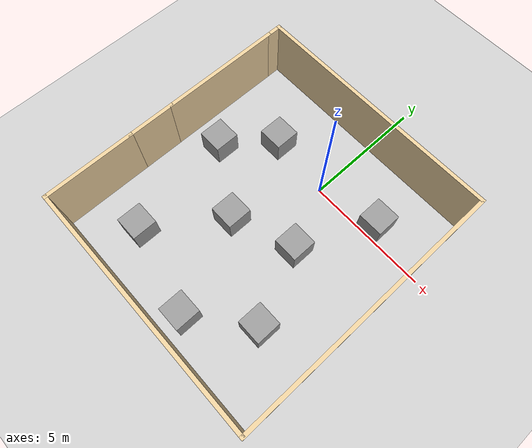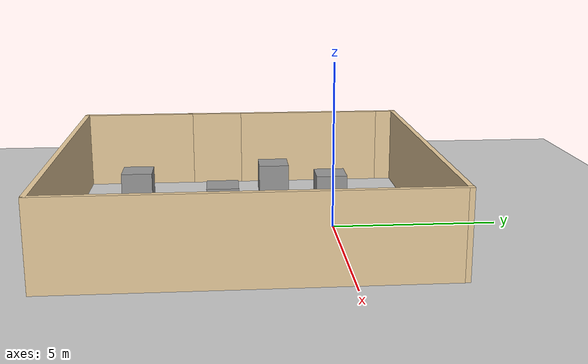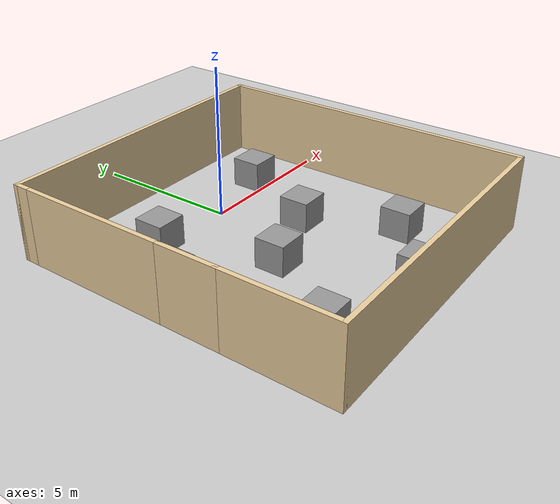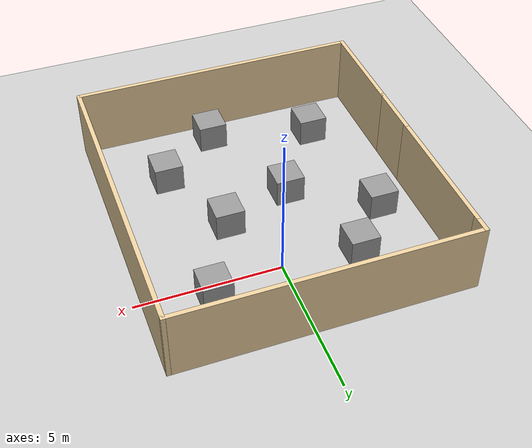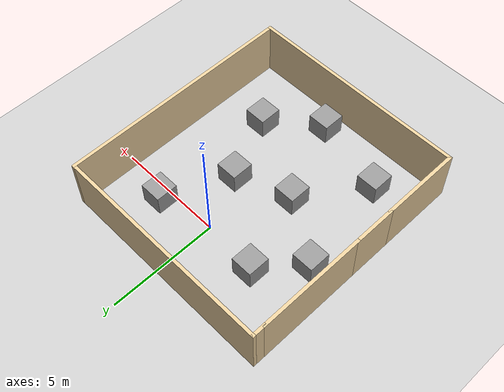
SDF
<?xml version="1.0"?>
<sdf version="1.9">
  <world name="maze">

    <physics name="1ms" type="ode">
      <max_step_size>0.001</max_step_size>
      <real_time_factor>1.0</real_time_factor>
    </physics>

    <plugin filename="libignition-gazebo-physics-system.so"
            name="ignition::gazebo::systems::Physics"/>
    <plugin filename="libignition-gazebo-user-commands-system.so"
            name="ignition::gazebo::systems::UserCommands"/>
    <plugin filename="libignition-gazebo-scene-broadcaster-system.so"
            name="ignition::gazebo::systems::SceneBroadcaster"/>
    <plugin filename="libignition-gazebo-sensors-system.so"
            name="ignition::gazebo::systems::Sensors">
      <render_engine>ogre2</render_engine>
    </plugin>
    <plugin filename="libignition-gazebo-contact-system.so"
            name="ignition::gazebo::systems::Contact"/>

    <light type="directional" name="sun">
      <cast_shadows>true</cast_shadows>
      <pose>0 0 10 0 0 0</pose>
      <diffuse>0.8 0.8 0.8 1</diffuse>
      <specular>0.2 0.2 0.2 1</specular>
      <direction>-0.5 0.1 -0.9</direction>
    </light>

    <!-- Ground plane -->
    <model name="ground_plane">
      <static>true</static>
      <link name="link">
        <collision name="collision">
          <geometry>
            <plane>
              <normal>0 0 1</normal>
              <size>100 100</size>
            </plane>
          </geometry>
          <surface>
            <friction>
              <ode><mu>1.0</mu><mu2>1.0</mu2></ode>
            </friction>
          </surface>
        </collision>
        <visual name="visual">
          <geometry>
            <plane>
              <normal>0 0 1</normal>
              <size>100 100</size>
            </plane>
          </geometry>
          <material>
            <ambient>0.8 0.8 0.8 1</ambient>
            <diffuse>0.8 0.8 0.8 1</diffuse>
          </material>
        </visual>
      </link>
    </model>

    <!-- Wall_0: south-left vertical segment, len=3.75, rot=-90° -->
    <model name="Wall_0">
      <static>true</static>
      <pose>-5.46 -6.22 0 0 0 -1.5708</pose>
      <link name="link">
        <collision name="col">
          <pose>0 0 1.25 0 0 0</pose>
          <geometry><box><size>3.75 0.15 2.5</size></box></geometry>
        </collision>
        <visual name="vis">
          <pose>0 0 1.25 0 0 0</pose>
          <geometry><box><size>3.75 0.15 2.5</size></box></geometry>
          <material><ambient>0.92 0.81 0.62 1</ambient><diffuse>0.92 0.81 0.62 1</diffuse></material>
        </visual>
      </link>
    </model>

    <!-- Wall_1: bottom horizontal, len=10.25 -->
    <model name="Wall_1">
      <static>true</static>
      <pose>-0.41 -8.02 0 0 0 0</pose>
      <link name="link">
        <collision name="col">
          <pose>0 0 1.25 0 0 0</pose>
          <geometry><box><size>10.25 0.15 2.5</size></box></geometry>
        </collision>
        <visual name="vis">
          <pose>0 0 1.25 0 0 0</pose>
          <geometry><box><size>10.25 0.15 2.5</size></box></geometry>
          <material><ambient>0.92 0.81 0.62 1</ambient><diffuse>0.92 0.81 0.62 1</diffuse></material>
        </visual>
      </link>
    </model>

    <!-- Wall_2: right vertical, len=11, rot=90° -->
    <model name="Wall_2">
      <static>true</static>
      <pose>4.64 -2.595 0 0 0 1.5708</pose>
      <link name="link">
        <collision name="col">
          <pose>0 0 1.25 0 0 0</pose>
          <geometry><box><size>11 0.15 2.5</size></box></geometry>
        </collision>
        <visual name="vis">
          <pose>0 0 1.25 0 0 0</pose>
          <geometry><box><size>11 0.15 2.5</size></box></geometry>
          <material><ambient>0.92 0.81 0.62 1</ambient><diffuse>0.92 0.81 0.62 1</diffuse></material>
        </visual>
      </link>
    </model>

    <!-- Wall_4: left lower gap vertical, len=2, rot=90° -->
    <model name="Wall_4">
      <static>true</static>
      <pose>-5.46 -3.495 0 0 0 1.5708</pose>
      <link name="link">
        <collision name="col">
          <pose>0 0 1.25 0 0 0</pose>
          <geometry><box><size>2 0.15 2.5</size></box></geometry>
        </collision>
        <visual name="vis">
          <pose>0 0 1.25 0 0 0</pose>
          <geometry><box><size>2 0.15 2.5</size></box></geometry>
          <material><ambient>0.92 0.81 0.62 1</ambient><diffuse>0.92 0.81 0.62 1</diffuse></material>
        </visual>
      </link>
    </model>

    <!-- Wall_5: left upper vertical, len=5, rot=90° -->
    <model name="Wall_5">
      <static>true</static>
      <pose>-5.46 -0.145 0 0 0 1.5708</pose>
      <link name="link">
        <collision name="col">
          <pose>0 0 1.25 0 0 0</pose>
          <geometry><box><size>5 0.15 2.5</size></box></geometry>
        </collision>
        <visual name="vis">
          <pose>0 0 1.25 0 0 0</pose>
          <geometry><box><size>5 0.15 2.5</size></box></geometry>
          <material><ambient>0.92 0.81 0.62 1</ambient><diffuse>0.92 0.81 0.62 1</diffuse></material>
        </visual>
      </link>
    </model>

    <!-- Wall_8: top horizontal, len=10.25 -->
    <model name="Wall_8">
      <static>true</static>
      <pose>-0.41 2.83 0 0 0 3.14159</pose>
      <link name="link">
        <collision name="col">
          <pose>0 0 1.25 0 0 0</pose>
          <geometry><box><size>10.25 0.15 2.5</size></box></geometry>
        </collision>
        <visual name="vis">
          <pose>0 0 1.25 0 0 0</pose>
          <geometry><box><size>10.25 0.15 2.5</size></box></geometry>
          <material><ambient>0.92 0.81 0.62 1</ambient><diffuse>0.92 0.81 0.62 1</diffuse></material>
        </visual>
      </link>
    </model>

    <!-- Wall_9: top-left short vertical, len=0.7, rot=-90° -->
    <model name="Wall_9">
      <static>true</static>
      <pose>-5.46 2.555 0 0 0 -1.5708</pose>
      <link name="link">
        <collision name="col">
          <pose>0 0 1.25 0 0 0</pose>
          <geometry><box><size>0.7 0.15 2.5</size></box></geometry>
        </collision>
        <visual name="vis">
          <pose>0 0 1.25 0 0 0</pose>
          <geometry><box><size>0.7 0.15 2.5</size></box></geometry>
          <material><ambient>0.92 0.81 0.62 1</ambient><diffuse>0.92 0.81 0.62 1</diffuse></material>
        </visual>
      </link>
    </model>

    <!-- Interior box obstacles (1×1×1 m, resting on ground at z=0.5) -->

    <model name="box_0">
      <static>true</static>
      <pose>-2.599 0.229 0.5 0 0 0</pose>
      <link name="link">
        <collision name="col"><geometry><box><size>1 1 1</size></box></geometry></collision>
        <visual name="vis">
          <geometry><box><size>1 1 1</size></box></geometry>
          <material><ambient>0.4 0.4 0.4 1</ambient><diffuse>0.6 0.6 0.6 1</diffuse></material>
        </visual>
      </link>
    </model>

    <model name="box_1">
      <static>true</static>
      <pose>1.091 -2.438 0.5 0 0 0</pose>
      <link name="link">
        <collision name="col"><geometry><box><size>1 1 1</size></box></geometry></collision>
        <visual name="vis">
          <geometry><box><size>1 1 1</size></box></geometry>
          <material><ambient>0.4 0.4 0.4 1</ambient><diffuse>0.6 0.6 0.6 1</diffuse></material>
        </visual>
      </link>
    </model>

    <model name="box_2">
      <static>true</static>
      <pose>-1.383 -3.322 0.5 0 0 0</pose>
      <link name="link">
        <collision name="col"><geometry><box><size>1 1 1</size></box></geometry></collision>
        <visual name="vis">
          <geometry><box><size>1 1 1</size></box></geometry>
          <material><ambient>0.4 0.4 0.4 1</ambient><diffuse>0.6 0.6 0.6 1</diffuse></material>
        </visual>
      </link>
    </model>

    <model name="box_3">
      <static>true</static>
      <pose>-3.371 -6.146 0.5 0 0 0</pose>
      <link name="link">
        <collision name="col"><geometry><box><size>1 1 1</size></box></geometry></collision>
        <visual name="vis">
          <geometry><box><size>1 1 1</size></box></geometry>
          <material><ambient>0.4 0.4 0.4 1</ambient><diffuse>0.6 0.6 0.6 1</diffuse></material>
        </visual>
      </link>
    </model>

    <model name="box_4">
      <static>true</static>
      <pose>2.467 0.506 0.5 0 0 0</pose>
      <link name="link">
        <collision name="col"><geometry><box><size>1 1 1</size></box></geometry></collision>
        <visual name="vis">
          <geometry><box><size>1 1 1</size></box></geometry>
          <material><ambient>0.4 0.4 0.4 1</ambient><diffuse>0.6 0.6 0.6 1</diffuse></material>
        </visual>
      </link>
    </model>

    <model name="box_5">
      <static>true</static>
      <pose>2.364 -5.329 0.5 0 0 0</pose>
      <link name="link">
        <collision name="col"><geometry><box><size>1 1 1</size></box></geometry></collision>
        <visual name="vis">
          <geometry><box><size>1 1 1</size></box></geometry>
          <material><ambient>0.4 0.4 0.4 1</ambient><diffuse>0.6 0.6 0.6 1</diffuse></material>
        </visual>
      </link>
    </model>

    <model name="box_6">
      <static>true</static>
      <pose>-4.104 -1.578 0.5 0 0 0</pose>
      <link name="link">
        <collision name="col"><geometry><box><size>1 1 1</size></box></geometry></collision>
        <visual name="vis">
          <geometry><box><size>1 1 1</size></box></geometry>
          <material><ambient>0.4 0.4 0.4 1</ambient><diffuse>0.6 0.6 0.6 1</diffuse></material>
        </visual>
      </link>
    </model>

    <model name="box_7">
      <static>true</static>
      <pose>0.208 -7.051 0.5 0 0 0</pose>
      <link name="link">
        <collision name="col"><geometry><box><size>1 1 1</size></box></geometry></collision>
        <visual name="vis">
          <geometry><box><size>1 1 1</size></box></geometry>
          <material><ambient>0.4 0.4 0.4 1</ambient><diffuse>0.6 0.6 0.6 1</diffuse></material>
        </visual>
      </link>
    </model>

  </world>
</sdf>
